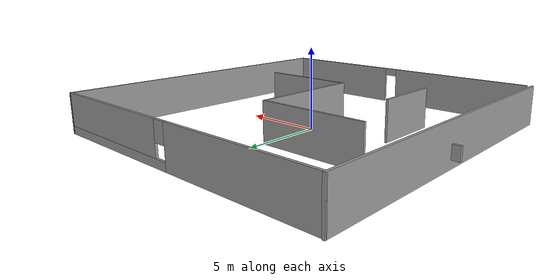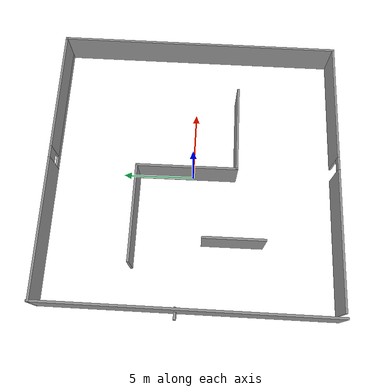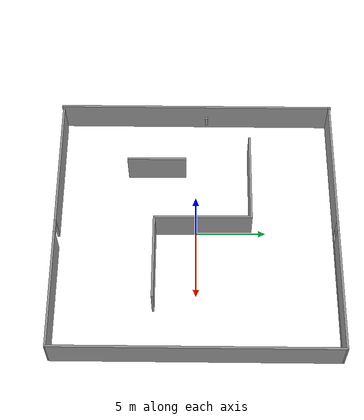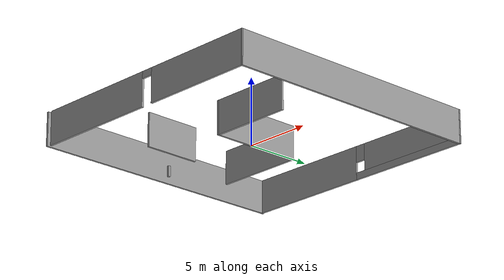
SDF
<?xml version='1.0'?>
<sdf version='1.7'>
  <model name='Untitled'>
    <pose>0.164385 0.02227 0 0 -0 0</pose>
    <link name='Wall_0'>
      <collision name='Wall_0_Collision'>
        <geometry>
          <box>
            <size>20.0619 0.15 2.5</size>
          </box>
        </geometry>
        <pose>0 0 1.25 0 -0 0</pose>
      </collision>
      <visual name='Wall_0_Visual'>
        <pose>0 0 1.25 0 -0 0</pose>
        <geometry>
          <box>
            <size>20.0619 0.15 2.5</size>
          </box>
        </geometry>
        <material>
          <script>
            <uri>file://media/materials/scripts/gazebo.material</uri>
            <name>Gazebo/Grey</name>
          </script>
          <ambient>1 1 1 1</ambient>
        </material>
        <meta>
          <layer>0</layer>
        </meta>
      </visual>
      <pose>-9.64424 -0.030771 0 0 -0 1.56462</pose>
    </link>
    <link name='Wall_1'>
      <pose>0.06152 9.92499 0 0 -0 0.00638</pose>
      <visual name='Wall_1_Visual_0'>
        <pose>-4.85377 0 1.25 0 -0 0</pose>
        <geometry>
          <box>
            <size>9.73133 0.15 2.5</size>
          </box>
        </geometry>
        <material>
          <script>
            <uri>file://media/materials/scripts/gazebo.material</uri>
            <name>Gazebo/Grey</name>
          </script>
          <ambient>1 1 1 1</ambient>
        </material>
        <meta>
          <layer>0</layer>
        </meta>
      </visual>
      <collision name='Wall_1_Collision_0'>
        <geometry>
          <box>
            <size>9.73133 0.15 2.5</size>
          </box>
        </geometry>
        <pose>-4.85377 0 1.25 0 -0 0</pose>
      </collision>
      <visual name='Wall_1_Visual_1'>
        <pose>4.86566 0 0.25 0 -0 0</pose>
        <geometry>
          <box>
            <size>9.70753 0.15 0.5</size>
          </box>
        </geometry>
        <material>
          <script>
            <uri>file://media/materials/scripts/gazebo.material</uri>
            <name>Gazebo/Grey</name>
          </script>
          <ambient>1 1 1 1</ambient>
        </material>
        <meta>
          <layer>0</layer>
        </meta>
      </visual>
      <collision name='Wall_1_Collision_1'>
        <geometry>
          <box>
            <size>9.70753 0.15 0.5</size>
          </box>
        </geometry>
        <pose>4.86566 0 0.25 0 -0 0</pose>
      </collision>
      <visual name='Wall_1_Visual_2'>
        <pose>5.26567 0 1.5 0 -0 0</pose>
        <geometry>
          <box>
            <size>8.90753 0.15 2</size>
          </box>
        </geometry>
        <material>
          <script>
            <uri>file://media/materials/scripts/gazebo.material</uri>
            <name>Gazebo/Grey</name>
          </script>
          <ambient>1 1 1 1</ambient>
        </material>
        <meta>
          <layer>0</layer>
        </meta>
      </visual>
      <collision name='Wall_1_Collision_2'>
        <geometry>
          <box>
            <size>8.90753 0.15 2</size>
          </box>
        </geometry>
        <pose>5.26567 0 1.5 0 -0 0</pose>
      </collision>
      <visual name='Wall_1_Visual_3'>
        <pose>0.411898 0 1.9 0 -0 0</pose>
        <geometry>
          <box>
            <size>0.8 0.15 1.2</size>
          </box>
        </geometry>
        <material>
          <script>
            <uri>file://media/materials/scripts/gazebo.material</uri>
            <name>Gazebo/Grey</name>
          </script>
          <ambient>1 1 1 1</ambient>
        </material>
        <meta>
          <layer>0</layer>
        </meta>
      </visual>
      <collision name='Wall_1_Collision_3'>
        <geometry>
          <box>
            <size>0.8 0.15 1.2</size>
          </box>
        </geometry>
        <pose>0.411898 0 1.9 0 -0 0</pose>
      </collision>
    </link>
    <link name='Wall_10'>
      <collision name='Wall_10_Collision'>
        <geometry>
          <box>
            <size>7 0.15 2.5</size>
          </box>
        </geometry>
        <pose>0 0 1.25 0 -0 0</pose>
      </collision>
      <visual name='Wall_10_Visual'>
        <pose>0 0 1.25 0 -0 0</pose>
        <geometry>
          <box>
            <size>7 0.15 2.5</size>
          </box>
        </geometry>
        <material>
          <script>
            <uri>file://media/materials/scripts/gazebo.material</uri>
            <name>Gazebo/Grey</name>
          </script>
          <ambient>1 1 1 1</ambient>
        </material>
        <meta>
          <layer>0</layer>
        </meta>
      </visual>
      <pose>-0.21217 0.447118 0 0 -0 -1.5708</pose>
    </link>
    <link name='Wall_11'>
      <collision name='Wall_11_Collision'>
        <geometry>
          <box>
            <size>6.25 0.15 2.5</size>
          </box>
        </geometry>
        <pose>0 0 1.25 0 -0 0</pose>
      </collision>
      <visual name='Wall_11_Visual'>
        <pose>0 0 1.25 0 -0 0</pose>
        <geometry>
          <box>
            <size>6.25 0.15 2.5</size>
          </box>
        </geometry>
        <material>
          <script>
            <uri>file://media/materials/scripts/gazebo.material</uri>
            <name>Gazebo/Grey</name>
          </script>
          <ambient>1 1 1 1</ambient>
        </material>
        <meta>
          <layer>0</layer>
        </meta>
      </visual>
      <pose>2.83783 -2.97788 0 0 -0 0</pose>
    </link>
    <link name='Wall_13'>
      <collision name='Wall_13_Collision'>
        <geometry>
          <box>
            <size>4.25 0.15 2.5</size>
          </box>
        </geometry>
        <pose>0 0 1.25 0 -0 0</pose>
      </collision>
      <visual name='Wall_13_Visual'>
        <pose>0 0 1.25 0 -0 0</pose>
        <geometry>
          <box>
            <size>4.25 0.15 2.5</size>
          </box>
        </geometry>
        <material>
          <script>
            <uri>file://media/materials/scripts/gazebo.material</uri>
            <name>Gazebo/Grey</name>
          </script>
          <ambient>1 1 1 1</ambient>
        </material>
        <meta>
          <layer>0</layer>
        </meta>
      </visual>
      <pose>-5.05323 -2.89184 0 0 -0 -1.5708</pose>
    </link>
    <link name='Wall_2'>
      <collision name='Wall_2_Collision'>
        <geometry>
          <box>
            <size>20.0907 0.15 2.5</size>
          </box>
        </geometry>
        <pose>0 0 1.25 0 -0 0</pose>
      </collision>
      <visual name='Wall_2_Visual'>
        <pose>0 0 1.25 0 -0 0</pose>
        <geometry>
          <box>
            <size>20.0907 0.15 2.5</size>
          </box>
        </geometry>
        <material>
          <script>
            <uri>file://media/materials/scripts/gazebo.material</uri>
            <name>Gazebo/Grey</name>
          </script>
          <ambient>1 1 1 1</ambient>
        </material>
        <meta>
          <layer>0</layer>
        </meta>
      </visual>
      <pose>9.64401 0.016384 0 0 -0 -1.57699</pose>
    </link>
    <link name='Wall_3'>
      <pose>0.114805 -9.93062 0 0 -0 3.13915</pose>
      <visual name='Wall_3_Visual_0'>
        <pose>-5.20141 0 1.25 0 -0 0</pose>
        <geometry>
          <box>
            <size>8.68216 0.15 2.5</size>
          </box>
        </geometry>
        <material>
          <script>
            <uri>file://media/materials/scripts/gazebo.material</uri>
            <name>Gazebo/Grey</name>
          </script>
          <ambient>1 1 1 1</ambient>
        </material>
        <meta>
          <layer>0</layer>
        </meta>
      </visual>
      <collision name='Wall_3_Collision_0'>
        <geometry>
          <box>
            <size>8.68216 0.15 2.5</size>
          </box>
        </geometry>
        <pose>-5.20141 0 1.25 0 -0 0</pose>
      </collision>
      <visual name='Wall_3_Visual_1'>
        <pose>4.79108 0 1.25 0 -0 0</pose>
        <geometry>
          <box>
            <size>9.50282 0.15 2.5</size>
          </box>
        </geometry>
        <material>
          <script>
            <uri>file://media/materials/scripts/gazebo.material</uri>
            <name>Gazebo/Grey</name>
          </script>
          <ambient>1 1 1 1</ambient>
        </material>
        <meta>
          <layer>0</layer>
        </meta>
      </visual>
      <collision name='Wall_3_Collision_1'>
        <geometry>
          <box>
            <size>9.50282 0.15 2.5</size>
          </box>
        </geometry>
        <pose>4.79108 0 1.25 0 -0 0</pose>
      </collision>
      <visual name='Wall_3_Visual_2'>
        <pose>-0.410331 0 2.25 0 -0 0</pose>
        <geometry>
          <box>
            <size>0.9 0.15 0.5</size>
          </box>
        </geometry>
        <material>
          <script>
            <uri>file://media/materials/scripts/gazebo.material</uri>
            <name>Gazebo/Grey</name>
          </script>
          <ambient>1 1 1 1</ambient>
        </material>
        <meta>
          <layer>0</layer>
        </meta>
      </visual>
      <collision name='Wall_3_Collision_2'>
        <geometry>
          <box>
            <size>0.9 0.15 0.5</size>
          </box>
        </geometry>
        <pose>-0.410331 0 2.25 0 -0 0</pose>
      </collision>
    </link>
    <link name='Wall_9'>
      <collision name='Wall_9_Collision'>
        <geometry>
          <box>
            <size>6.75 0.15 2.5</size>
          </box>
        </geometry>
        <pose>0 0 1.25 0 -0 0</pose>
      </collision>
      <visual name='Wall_9_Visual'>
        <pose>0 0 1.25 0 -0 0</pose>
        <geometry>
          <box>
            <size>6.75 0.15 2.5</size>
          </box>
        </geometry>
        <material>
          <script>
            <uri>file://media/materials/scripts/gazebo.material</uri>
            <name>Gazebo/Grey</name>
          </script>
          <ambient>1 1 1 1</ambient>
        </material>
        <meta>
          <layer>0</layer>
        </meta>
      </visual>
      <pose>-3.51217 3.87212 0 0 -0 0</pose>
    </link>
    <link name='Window_0'>
      <collision name='Window_0_Collision'>
        <geometry>
          <box>
            <size>0.8 0.17 0.8</size>
          </box>
        </geometry>
        <pose>0 0 0.4 0 -0 0</pose>
      </collision>
      <visual name='Window_0_Visual'>
        <pose>0 0 0.4 0 -0 0</pose>
        <geometry>
          <box>
            <size>0.8 0.17 0.8</size>
          </box>
        </geometry>
        <material>
          <script>
            <uri>file://media/materials/scripts/gazebo.material</uri>
            <name>Gazebo/Grey</name>
          </script>
        </material>
      </visual>
      <pose>-9.80081 0.730341 0.5 0 -0 0</pose>
    </link>
    <static>1</static>
  </model>
</sdf>
